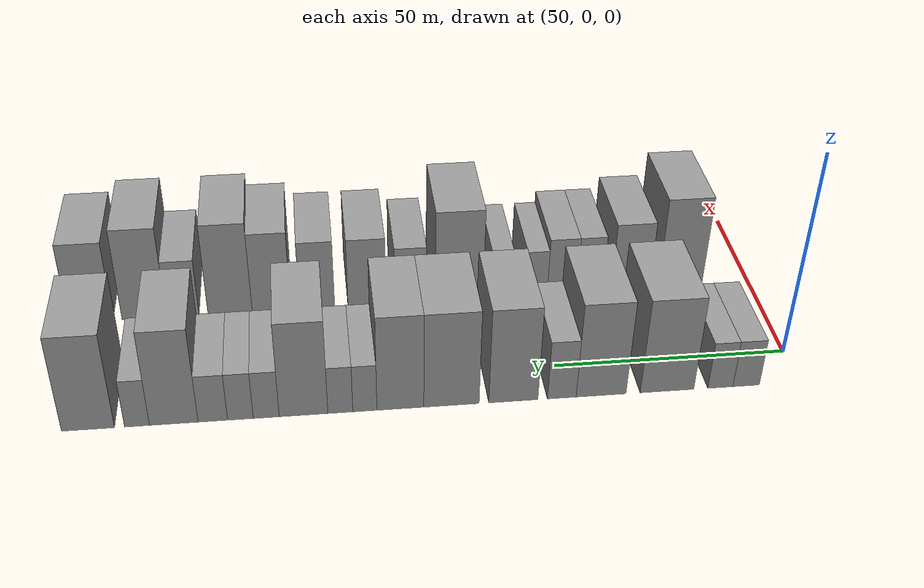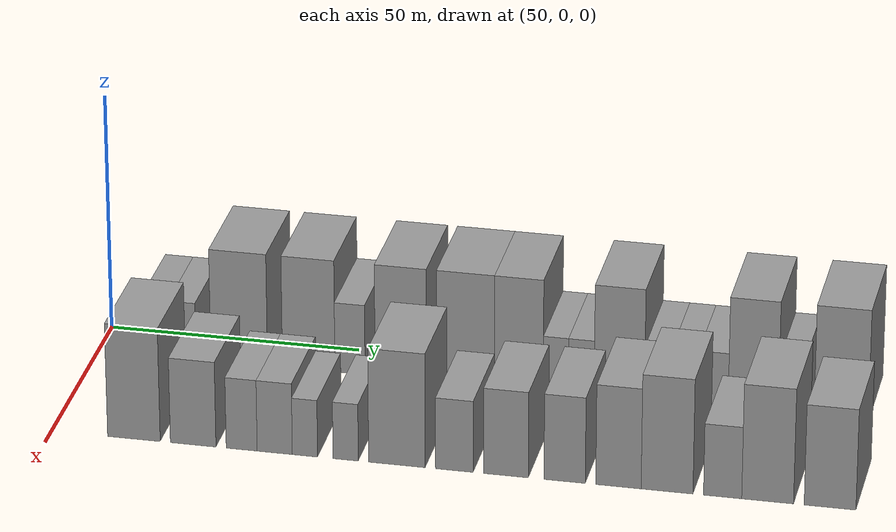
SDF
<sdf version="1.6">
 <world name="default">
  <model name="building_34">
   <static>1</static>
   <pose>50.0000 11.3781 0 0.000000 0.000000 0.000000</pose>
   <link name="link">
    <pose>0 0 6.00 0 0 0</pose>
    <collision name="collision"><geometry><box><size>20.0000 5.6528 12.0000</size></box></geometry></collision>
    <visual name="visual">
     <cast_shadows>0</cast_shadows>
     <geometry><box><size>20.0000 5.6528 12.0000</size></box></geometry>
     <material>
      <script>
       <uri>model://grey_wall/materials/scripts</uri>
       <uri>model://grey_wall/materials/textures</uri>
       <name>vrc/grey_wall</name>
      </script>
     </material>
    </visual>
   </link>
  </model>
  <model name="building_35">
   <static>1</static>
   <pose>50.0000 16.8766 0 0.000000 0.000000 0.000000</pose>
   <link name="link">
    <pose>0 0 6.00 0 0 0</pose>
    <collision name="collision"><geometry><box><size>20.0000 5.3441 12.0000</size></box></geometry></collision>
    <visual name="visual">
     <cast_shadows>0</cast_shadows>
     <geometry><box><size>20.0000 5.3441 12.0000</size></box></geometry>
     <material>
      <script>
       <uri>model://grey_wall/materials/scripts</uri>
       <uri>model://grey_wall/materials/textures</uri>
       <name>vrc/grey_wall</name>
      </script>
     </material>
    </visual>
   </link>
  </model>
  <model name="building_36">
   <static>1</static>
   <pose>50.0000 28.2322 0 0.000000 0.000000 0.000000</pose>
   <link name="link">
    <pose>0 0 12.00 0 0 0</pose>
    <collision name="collision"><geometry><box><size>20.0000 11.3671 24.0000</size></box></geometry></collision>
    <visual name="visual">
     <cast_shadows>0</cast_shadows>
     <geometry><box><size>20.0000 11.3671 24.0000</size></box></geometry>
     <material>
      <script>
       <uri>model://grey_wall/materials/scripts</uri>
       <uri>model://grey_wall/materials/textures</uri>
       <name>vrc/grey_wall</name>
      </script>
     </material>
    </visual>
   </link>
  </model>
  <model name="building_37">
   <static>1</static>
   <pose>50.0000 42.1491 0 0.000000 0.000000 0.000000</pose>
   <link name="link">
    <pose>0 0 12.00 0 0 0</pose>
    <collision name="collision"><geometry><box><size>20.0000 10.4667 24.0000</size></box></geometry></collision>
    <visual name="visual">
     <cast_shadows>0</cast_shadows>
     <geometry><box><size>20.0000 10.4667 24.0000</size></box></geometry>
     <material>
      <script>
       <uri>model://grey_wall/materials/scripts</uri>
       <uri>model://grey_wall/materials/textures</uri>
       <name>vrc/grey_wall</name>
      </script>
     </material>
    </visual>
   </link>
  </model>
  <model name="building_38">
   <static>1</static>
   <pose>50.0000 50.3869 0 0.000000 0.000000 0.000000</pose>
   <link name="link">
    <pose>0 0 7.50 0 0 0</pose>
    <collision name="collision"><geometry><box><size>20.0000 6.0088 15.0000</size></box></geometry></collision>
    <visual name="visual">
     <cast_shadows>0</cast_shadows>
     <geometry><box><size>20.0000 6.0088 15.0000</size></box></geometry>
     <material>
      <script>
       <uri>model://grey_wall/materials/scripts</uri>
       <uri>model://grey_wall/materials/textures</uri>
       <name>vrc/grey_wall</name>
      </script>
     </material>
    </visual>
   </link>
  </model>
  <model name="building_39">
   <static>1</static>
   <pose>50.0000 60.5016 0 0.000000 0.000000 0.000000</pose>
   <link name="link">
    <pose>0 0 12.00 0 0 0</pose>
    <collision name="collision"><geometry><box><size>20.0000 10.2207 24.0000</size></box></geometry></collision>
    <visual name="visual">
     <cast_shadows>0</cast_shadows>
     <geometry><box><size>20.0000 10.2207 24.0000</size></box></geometry>
     <material>
      <script>
       <uri>model://grey_wall/materials/scripts</uri>
       <uri>model://grey_wall/materials/textures</uri>
       <name>vrc/grey_wall</name>
      </script>
     </material>
    </visual>
   </link>
  </model>
  <model name="building_40">
   <static>1</static>
   <pose>50.0000 73.3194 0 0.000000 0.000000 0.000000</pose>
   <link name="link">
    <pose>0 0 12.00 0 0 0</pose>
    <collision name="collision"><geometry><box><size>20.0000 11.4149 24.0000</size></box></geometry></collision>
    <visual name="visual">
     <cast_shadows>0</cast_shadows>
     <geometry><box><size>20.0000 11.4149 24.0000</size></box></geometry>
     <material>
      <script>
       <uri>model://grey_wall/materials/scripts</uri>
       <uri>model://grey_wall/materials/textures</uri>
       <name>vrc/grey_wall</name>
      </script>
     </material>
    </visual>
   </link>
  </model>
  <model name="building_41">
   <static>1</static>
   <pose>50.0000 83.8355 0 0.000000 0.000000 0.000000</pose>
   <link name="link">
    <pose>0 0 12.00 0 0 0</pose>
    <collision name="collision"><geometry><box><size>20.0000 9.6173 24.0000</size></box></geometry></collision>
    <visual name="visual">
     <cast_shadows>0</cast_shadows>
     <geometry><box><size>20.0000 9.6173 24.0000</size></box></geometry>
     <material>
      <script>
       <uri>model://grey_wall/materials/scripts</uri>
       <uri>model://grey_wall/materials/textures</uri>
       <name>vrc/grey_wall</name>
      </script>
     </material>
    </visual>
   </link>
  </model>
  <model name="building_42">
   <static>1</static>
   <pose>50.0000 91.1085 0 0.000000 0.000000 0.000000</pose>
   <link name="link">
    <pose>0 0 6.00 0 0 0</pose>
    <collision name="collision"><geometry><box><size>20.0000 4.9288 12.0000</size></box></geometry></collision>
    <visual name="visual">
     <cast_shadows>0</cast_shadows>
     <geometry><box><size>20.0000 4.9288 12.0000</size></box></geometry>
     <material>
      <script>
       <uri>model://grey_wall/materials/scripts</uri>
       <uri>model://grey_wall/materials/textures</uri>
       <name>vrc/grey_wall</name>
      </script>
     </material>
    </visual>
   </link>
  </model>
  <model name="building_43">
   <static>1</static>
   <pose>50.0000 96.1095 0 0.000000 0.000000 0.000000</pose>
   <link name="link">
    <pose>0 0 6.00 0 0 0</pose>
    <collision name="collision"><geometry><box><size>20.0000 5.0732 12.0000</size></box></geometry></collision>
    <visual name="visual">
     <cast_shadows>0</cast_shadows>
     <geometry><box><size>20.0000 5.0732 12.0000</size></box></geometry>
     <material>
      <script>
       <uri>model://grey_wall/materials/scripts</uri>
       <uri>model://grey_wall/materials/textures</uri>
       <name>vrc/grey_wall</name>
      </script>
     </material>
    </visual>
   </link>
  </model>
  <model name="building_44">
   <static>1</static>
   <pose>50.0000 103.5776 0 0.000000 0.000000 0.000000</pose>
   <link name="link">
    <pose>0 0 12.00 0 0 0</pose>
    <collision name="collision"><geometry><box><size>20.0000 9.8629 24.0000</size></box></geometry></collision>
    <visual name="visual">
     <cast_shadows>0</cast_shadows>
     <geometry><box><size>20.0000 9.8629 24.0000</size></box></geometry>
     <material>
      <script>
       <uri>model://grey_wall/materials/scripts</uri>
       <uri>model://grey_wall/materials/textures</uri>
       <name>vrc/grey_wall</name>
      </script>
     </material>
    </visual>
   </link>
  </model>
  <model name="building_45">
   <static>1</static>
   <pose>50.0000 111.1293 0 0.000000 0.000000 0.000000</pose>
   <link name="link">
    <pose>0 0 6.00 0 0 0</pose>
    <collision name="collision"><geometry><box><size>20.0000 5.2404 12.0000</size></box></geometry></collision>
    <visual name="visual">
     <cast_shadows>0</cast_shadows>
     <geometry><box><size>20.0000 5.2404 12.0000</size></box></geometry>
     <material>
      <script>
       <uri>model://grey_wall/materials/scripts</uri>
       <uri>model://grey_wall/materials/textures</uri>
       <name>vrc/grey_wall</name>
      </script>
     </material>
    </visual>
   </link>
  </model>
  <model name="building_46">
   <static>1</static>
   <pose>50.0000 116.3357 0 0.000000 0.000000 0.000000</pose>
   <link name="link">
    <pose>0 0 6.00 0 0 0</pose>
    <collision name="collision"><geometry><box><size>20.0000 5.1725 12.0000</size></box></geometry></collision>
    <visual name="visual">
     <cast_shadows>0</cast_shadows>
     <geometry><box><size>20.0000 5.1725 12.0000</size></box></geometry>
     <material>
      <script>
       <uri>model://grey_wall/materials/scripts</uri>
       <uri>model://grey_wall/materials/textures</uri>
       <name>vrc/grey_wall</name>
      </script>
     </material>
    </visual>
   </link>
  </model>
  <model name="building_47">
   <static>1</static>
   <pose>50.0000 121.8743 0 0.000000 0.000000 0.000000</pose>
   <link name="link">
    <pose>0 0 6.00 0 0 0</pose>
    <collision name="collision"><geometry><box><size>20.0000 5.9047 12.0000</size></box></geometry></collision>
    <visual name="visual">
     <cast_shadows>0</cast_shadows>
     <geometry><box><size>20.0000 5.9047 12.0000</size></box></geometry>
     <material>
      <script>
       <uri>model://grey_wall/materials/scripts</uri>
       <uri>model://grey_wall/materials/textures</uri>
       <name>vrc/grey_wall</name>
      </script>
     </material>
    </visual>
   </link>
  </model>
  <model name="building_48">
   <static>1</static>
   <pose>50.0000 129.6928 0 0.000000 0.000000 0.000000</pose>
   <link name="link">
    <pose>0 0 12.00 0 0 0</pose>
    <collision name="collision"><geometry><box><size>20.0000 9.7323 24.0000</size></box></geometry></collision>
    <visual name="visual">
     <cast_shadows>0</cast_shadows>
     <geometry><box><size>20.0000 9.7323 24.0000</size></box></geometry>
     <material>
      <script>
       <uri>model://grey_wall/materials/scripts</uri>
       <uri>model://grey_wall/materials/textures</uri>
       <name>vrc/grey_wall</name>
      </script>
     </material>
    </visual>
   </link>
  </model>
  <model name="building_49">
   <static>1</static>
   <pose>50.0000 137.0227 0 0.000000 0.000000 0.000000</pose>
   <link name="link">
    <pose>0 0 6.00 0 0 0</pose>
    <collision name="collision"><geometry><box><size>20.0000 4.9277 12.0000</size></box></geometry></collision>
    <visual name="visual">
     <cast_shadows>0</cast_shadows>
     <geometry><box><size>20.0000 4.9277 12.0000</size></box></geometry>
     <material>
      <script>
       <uri>model://grey_wall/materials/scripts</uri>
       <uri>model://grey_wall/materials/textures</uri>
       <name>vrc/grey_wall</name>
      </script>
     </material>
    </visual>
   </link>
  </model>
  <model name="building_50">
   <static>1</static>
   <pose>50.0000 146.7251 0 0.000000 0.000000 0.000000</pose>
   <link name="link">
    <pose>0 0 12.00 0 0 0</pose>
    <collision name="collision"><geometry><box><size>20.0000 10.4770 24.0000</size></box></geometry></collision>
    <visual name="visual">
     <cast_shadows>0</cast_shadows>
     <geometry><box><size>20.0000 10.4770 24.0000</size></box></geometry>
     <material>
      <script>
       <uri>model://grey_wall/materials/scripts</uri>
       <uri>model://grey_wall/materials/textures</uri>
       <name>vrc/grey_wall</name>
      </script>
     </material>
    </visual>
   </link>
  </model>
  <model name="building_98">
   <static>1</static>
   <pose>85.0000 16.2020 0 0.000000 0.000000 0.000000</pose>
   <link name="link">
    <pose>0 0 12.00 0 0 0</pose>
    <collision name="collision"><geometry><box><size>20.0000 10.3148 24.0000</size></box></geometry></collision>
    <visual name="visual">
     <cast_shadows>0</cast_shadows>
     <geometry><box><size>20.0000 10.3148 24.0000</size></box></geometry>
     <material>
      <script>
       <uri>model://grey_wall/materials/scripts</uri>
       <uri>model://grey_wall/materials/textures</uri>
       <name>vrc/grey_wall</name>
      </script>
     </material>
    </visual>
   </link>
  </model>
  <model name="building_99">
   <static>1</static>
   <pose>85.0000 27.8153 0 0.000000 0.000000 0.000000</pose>
   <link name="link">
    <pose>0 0 9.00 0 0 0</pose>
    <collision name="collision"><geometry><box><size>20.0000 8.9116 18.0000</size></box></geometry></collision>
    <visual name="visual">
     <cast_shadows>0</cast_shadows>
     <geometry><box><size>20.0000 8.9116 18.0000</size></box></geometry>
     <material>
      <script>
       <uri>model://grey_wall/materials/scripts</uri>
       <uri>model://grey_wall/materials/textures</uri>
       <name>vrc/grey_wall</name>
      </script>
     </material>
    </visual>
   </link>
  </model>
  <model name="building_100">
   <static>1</static>
   <pose>85.0000 37.2884 0 0.000000 0.000000 0.000000</pose>
   <link name="link">
    <pose>0 0 7.50 0 0 0</pose>
    <collision name="collision"><geometry><box><size>20.0000 6.0346 15.0000</size></box></geometry></collision>
    <visual name="visual">
     <cast_shadows>0</cast_shadows>
     <geometry><box><size>20.0000 6.0346 15.0000</size></box></geometry>
     <material>
      <script>
       <uri>model://grey_wall/materials/scripts</uri>
       <uri>model://grey_wall/materials/textures</uri>
       <name>vrc/grey_wall</name>
      </script>
     </material>
    </visual>
   </link>
  </model>
  <model name="building_101">
   <static>1</static>
   <pose>85.0000 43.7230 0 0.000000 0.000000 0.000000</pose>
   <link name="link">
    <pose>0 0 7.50 0 0 0</pose>
    <collision name="collision"><geometry><box><size>20.0000 6.8346 15.0000</size></box></geometry></collision>
    <visual name="visual">
     <cast_shadows>0</cast_shadows>
     <geometry><box><size>20.0000 6.8346 15.0000</size></box></geometry>
     <material>
      <script>
       <uri>model://grey_wall/materials/scripts</uri>
       <uri>model://grey_wall/materials/textures</uri>
       <name>vrc/grey_wall</name>
      </script>
     </material>
    </visual>
   </link>
  </model>
  <model name="building_102">
   <static>1</static>
   <pose>85.0000 49.5884 0 0.000000 0.000000 0.000000</pose>
   <link name="link">
    <pose>0 0 6.00 0 0 0</pose>
    <collision name="collision"><geometry><box><size>20.0000 4.8964 12.0000</size></box></geometry></collision>
    <visual name="visual">
     <cast_shadows>0</cast_shadows>
     <geometry><box><size>20.0000 4.8964 12.0000</size></box></geometry>
     <material>
      <script>
       <uri>model://grey_wall/materials/scripts</uri>
       <uri>model://grey_wall/materials/textures</uri>
       <name>vrc/grey_wall</name>
      </script>
     </material>
    </visual>
   </link>
  </model>
  <model name="building_103">
   <static>1</static>
   <pose>85.0000 57.4824 0 0.000000 0.000000 0.000000</pose>
   <link name="link">
    <pose>0 0 6.00 0 0 0</pose>
    <collision name="collision"><geometry><box><size>20.0000 4.8916 12.0000</size></box></geometry></collision>
    <visual name="visual">
     <cast_shadows>0</cast_shadows>
     <geometry><box><size>20.0000 4.8916 12.0000</size></box></geometry>
     <material>
      <script>
       <uri>model://grey_wall/materials/scripts</uri>
       <uri>model://grey_wall/materials/textures</uri>
       <name>vrc/grey_wall</name>
      </script>
     </material>
    </visual>
   </link>
  </model>
  <model name="building_104">
   <static>1</static>
   <pose>85.0000 67.3909 0 0.000000 0.000000 0.000000</pose>
   <link name="link">
    <pose>0 0 12.00 0 0 0</pose>
    <collision name="collision"><geometry><box><size>20.0000 10.9254 24.0000</size></box></geometry></collision>
    <visual name="visual">
     <cast_shadows>0</cast_shadows>
     <geometry><box><size>20.0000 10.9254 24.0000</size></box></geometry>
     <material>
      <script>
       <uri>model://grey_wall/materials/scripts</uri>
       <uri>model://grey_wall/materials/textures</uri>
       <name>vrc/grey_wall</name>
      </script>
     </material>
    </visual>
   </link>
  </model>
  <model name="building_105">
   <static>1</static>
   <pose>85.0000 78.4646 0 0.000000 0.000000 0.000000</pose>
   <link name="link">
    <pose>0 0 7.50 0 0 0</pose>
    <collision name="collision"><geometry><box><size>20.0000 7.2220 15.0000</size></box></geometry></collision>
    <visual name="visual">
     <cast_shadows>0</cast_shadows>
     <geometry><box><size>20.0000 7.2220 15.0000</size></box></geometry>
     <material>
      <script>
       <uri>model://grey_wall/materials/scripts</uri>
       <uri>model://grey_wall/materials/textures</uri>
       <name>vrc/grey_wall</name>
      </script>
     </material>
    </visual>
   </link>
  </model>
  <model name="building_106">
   <static>1</static>
   <pose>85.0000 88.3648 0 0.000000 0.000000 0.000000</pose>
   <link name="link">
    <pose>0 0 9.00 0 0 0</pose>
    <collision name="collision"><geometry><box><size>20.0000 8.5785 18.0000</size></box></geometry></collision>
    <visual name="visual">
     <cast_shadows>0</cast_shadows>
     <geometry><box><size>20.0000 8.5785 18.0000</size></box></geometry>
     <material>
      <script>
       <uri>model://grey_wall/materials/scripts</uri>
       <uri>model://grey_wall/materials/textures</uri>
       <name>vrc/grey_wall</name>
      </script>
     </material>
    </visual>
   </link>
  </model>
  <model name="building_107">
   <static>1</static>
   <pose>85.0000 99.5884 0 0.000000 0.000000 0.000000</pose>
   <link name="link">
    <pose>0 0 9.00 0 0 0</pose>
    <collision name="collision"><geometry><box><size>20.0000 7.8687 18.0000</size></box></geometry></collision>
    <visual name="visual">
     <cast_shadows>0</cast_shadows>
     <geometry><box><size>20.0000 7.8687 18.0000</size></box></geometry>
     <material>
      <script>
       <uri>model://grey_wall/materials/scripts</uri>
       <uri>model://grey_wall/materials/textures</uri>
       <name>vrc/grey_wall</name>
      </script>
     </material>
    </visual>
   </link>
  </model>
  <model name="building_108">
   <static>1</static>
   <pose>85.0000 109.8378 0 0.000000 0.000000 0.000000</pose>
   <link name="link">
    <pose>0 0 10.50 0 0 0</pose>
    <collision name="collision"><geometry><box><size>20.0000 8.6301 21.0000</size></box></geometry></collision>
    <visual name="visual">
     <cast_shadows>0</cast_shadows>
     <geometry><box><size>20.0000 8.6301 21.0000</size></box></geometry>
     <material>
      <script>
       <uri>model://grey_wall/materials/scripts</uri>
       <uri>model://grey_wall/materials/textures</uri>
       <name>vrc/grey_wall</name>
      </script>
     </material>
    </visual>
   </link>
  </model>
  <model name="building_109">
   <static>1</static>
   <pose>85.0000 119.0690 0 0.000000 0.000000 0.000000</pose>
   <link name="link">
    <pose>0 0 12.00 0 0 0</pose>
    <collision name="collision"><geometry><box><size>20.0000 9.8322 24.0000</size></box></geometry></collision>
    <visual name="visual">
     <cast_shadows>0</cast_shadows>
     <geometry><box><size>20.0000 9.8322 24.0000</size></box></geometry>
     <material>
      <script>
       <uri>model://grey_wall/materials/scripts</uri>
       <uri>model://grey_wall/materials/textures</uri>
       <name>vrc/grey_wall</name>
      </script>
     </material>
    </visual>
   </link>
  </model>
  <model name="building_110">
   <static>1</static>
   <pose>85.0000 129.5925 0 0.000000 0.000000 0.000000</pose>
   <link name="link">
    <pose>0 0 7.50 0 0 0</pose>
    <collision name="collision"><geometry><box><size>20.0000 7.2148 15.0000</size></box></geometry></collision>
    <visual name="visual">
     <cast_shadows>0</cast_shadows>
     <geometry><box><size>20.0000 7.2148 15.0000</size></box></geometry>
     <material>
      <script>
       <uri>model://grey_wall/materials/scripts</uri>
       <uri>model://grey_wall/materials/textures</uri>
       <name>vrc/grey_wall</name>
      </script>
     </material>
    </visual>
   </link>
  </model>
  <model name="building_111">
   <static>1</static>
   <pose>85.0000 138.0838 0 0.000000 0.000000 0.000000</pose>
   <link name="link">
    <pose>0 0 12.00 0 0 0</pose>
    <collision name="collision"><geometry><box><size>20.0000 9.7677 24.0000</size></box></geometry></collision>
    <visual name="visual">
     <cast_shadows>0</cast_shadows>
     <geometry><box><size>20.0000 9.7677 24.0000</size></box></geometry>
     <material>
      <script>
       <uri>model://grey_wall/materials/scripts</uri>
       <uri>model://grey_wall/materials/textures</uri>
       <name>vrc/grey_wall</name>
      </script>
     </material>
    </visual>
   </link>
  </model>
  <model name="building_112">
   <static>1</static>
   <pose>85.0000 149.8265 0 0.000000 0.000000 0.000000</pose>
   <link name="link">
    <pose>0 0 10.50 0 0 0</pose>
    <collision name="collision"><geometry><box><size>20.0000 9.7176 21.0000</size></box></geometry></collision>
    <visual name="visual">
     <cast_shadows>0</cast_shadows>
     <geometry><box><size>20.0000 9.7176 21.0000</size></box></geometry>
     <material>
      <script>
       <uri>model://grey_wall/materials/scripts</uri>
       <uri>model://grey_wall/materials/textures</uri>
       <name>vrc/grey_wall</name>
      </script>
     </material>
    </visual>
   </link>
  </model>
 </world>
</sdf>
